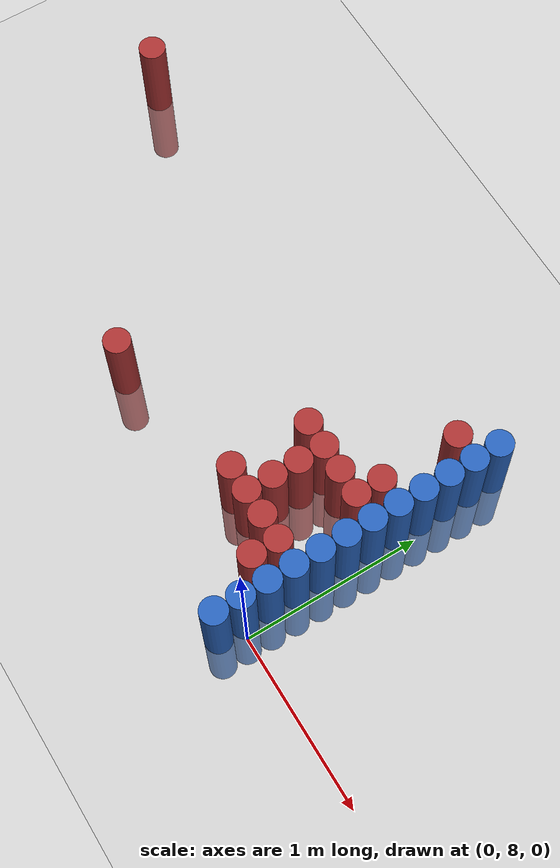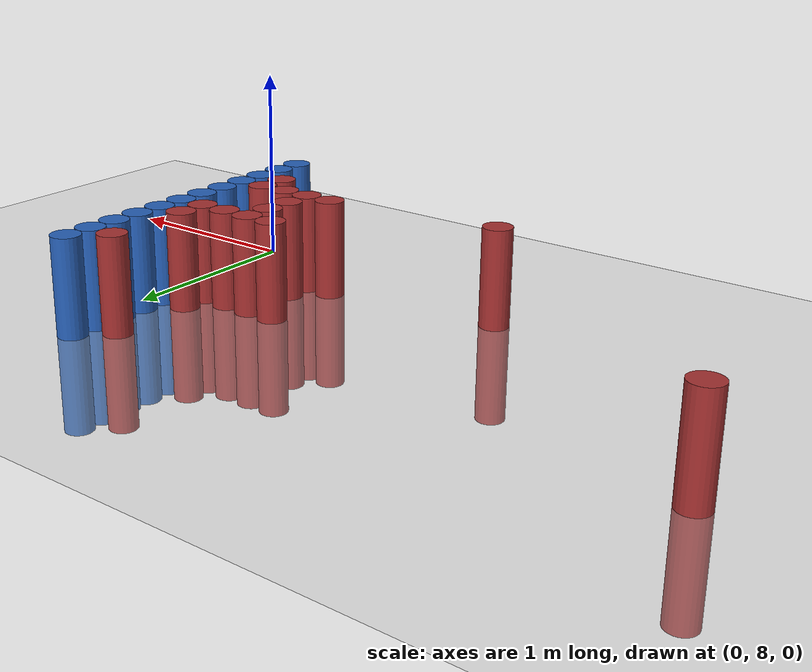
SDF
<sdf version="1.6">
 <world name="world_172">
  <model name="ground_plane">
   <static>1</static>
   <link name="link">
    <collision name="collision">
     <geometry><plane><normal>0 0 1</normal><size>100 100</size></plane></geometry>
     <surface><friction><ode><mu>100</mu><mu2>50</mu2></ode></friction></surface>
    </collision>
    <visual name="visual">
     <cast_shadows>0</cast_shadows>
     <geometry><plane><normal>0 0 1</normal><size>100 100</size></plane></geometry>
     <material>
      <script><uri>file://media/materials/scripts/gazebo.material</uri><name>Gazebo/Grey</name></script>
     </material>
    </visual>
   </link>
  </model>
  <model name="unit_cylinder_157">
   <static>1</static>
   <pose>-3.075000 9.225000 0.000000 0.000000 0.000000 0.000000</pose>
   <link name="link">
    <inertial>
     <mass>1</mass>
     <inertia><ixx>0.145833</ixx><ixy>0</ixy><ixz>0</ixz><iyy>0.145833</iyy><iyz>0</iyz><izz>0.125</izz></inertia>
    </inertial>
    <collision name="collision">
     <geometry><cylinder><radius>0.075000</radius><length>1</length></cylinder></geometry>
    </collision>
    <visual name="visual">
     <geometry><cylinder><radius>0.075000</radius><length>1</length></cylinder></geometry>
     <material>
      <ambient>0.648000 0.192000 0.192000 1</ambient>
      <diffuse>0.648000 0.192000 0.192000 1</diffuse>
     </material>
     <material>
      <script><name>Gazebo/Grey</name><uri>file://media/materials/scripts/gazebo.material</uri></script>
     </material>
    </visual>
   </link>
  </model>
  <model name="unit_cylinder_163">
   <static>1</static>
   <pose>-1.575000 8.175000 0.000000 0.000000 0.000000 0.000000</pose>
   <link name="link">
    <inertial>
     <mass>1</mass>
     <inertia><ixx>0.145833</ixx><ixy>0</ixy><ixz>0</ixz><iyy>0.145833</iyy><iyz>0</iyz><izz>0.125</izz></inertia>
    </inertial>
    <collision name="collision">
     <geometry><cylinder><radius>0.075000</radius><length>1</length></cylinder></geometry>
    </collision>
    <visual name="visual">
     <geometry><cylinder><radius>0.075000</radius><length>1</length></cylinder></geometry>
     <material>
      <ambient>0.648000 0.192000 0.192000 1</ambient>
      <diffuse>0.648000 0.192000 0.192000 1</diffuse>
     </material>
     <material>
      <script><name>Gazebo/Grey</name><uri>file://media/materials/scripts/gazebo.material</uri></script>
     </material>
    </visual>
   </link>
  </model>
  <model name="unit_cylinder_164">
   <static>1</static>
   <pose>-0.675000 8.325000 0.000000 0.000000 0.000000 0.000000</pose>
   <link name="link">
    <inertial>
     <mass>1</mass>
     <inertia><ixx>0.145833</ixx><ixy>0</ixy><ixz>0</ixz><iyy>0.145833</iyy><iyz>0</iyz><izz>0.125</izz></inertia>
    </inertial>
    <collision name="collision">
     <geometry><cylinder><radius>0.075000</radius><length>1</length></cylinder></geometry>
    </collision>
    <visual name="visual">
     <geometry><cylinder><radius>0.075000</radius><length>1</length></cylinder></geometry>
     <material>
      <ambient>0.648000 0.192000 0.192000 1</ambient>
      <diffuse>0.648000 0.192000 0.192000 1</diffuse>
     </material>
     <material>
      <script><name>Gazebo/Grey</name><uri>file://media/materials/scripts/gazebo.material</uri></script>
     </material>
    </visual>
   </link>
  </model>
  <model name="unit_cylinder_165">
   <static>1</static>
   <pose>-0.675000 8.775000 0.000000 0.000000 0.000000 0.000000</pose>
   <link name="link">
    <inertial>
     <mass>1</mass>
     <inertia><ixx>0.145833</ixx><ixy>0</ixy><ixz>0</ixz><iyy>0.145833</iyy><iyz>0</iyz><izz>0.125</izz></inertia>
    </inertial>
    <collision name="collision">
     <geometry><cylinder><radius>0.075000</radius><length>1</length></cylinder></geometry>
    </collision>
    <visual name="visual">
     <geometry><cylinder><radius>0.075000</radius><length>1</length></cylinder></geometry>
     <material>
      <ambient>0.648000 0.192000 0.192000 1</ambient>
      <diffuse>0.648000 0.192000 0.192000 1</diffuse>
     </material>
     <material>
      <script><name>Gazebo/Grey</name><uri>file://media/materials/scripts/gazebo.material</uri></script>
     </material>
    </visual>
   </link>
  </model>
  <model name="unit_cylinder_166">
   <static>1</static>
   <pose>-0.525000 8.325000 0.000000 0.000000 0.000000 0.000000</pose>
   <link name="link">
    <inertial>
     <mass>1</mass>
     <inertia><ixx>0.145833</ixx><ixy>0</ixy><ixz>0</ixz><iyy>0.145833</iyy><iyz>0</iyz><izz>0.125</izz></inertia>
    </inertial>
    <collision name="collision">
     <geometry><cylinder><radius>0.075000</radius><length>1</length></cylinder></geometry>
    </collision>
    <visual name="visual">
     <geometry><cylinder><radius>0.075000</radius><length>1</length></cylinder></geometry>
     <material>
      <ambient>0.648000 0.192000 0.192000 1</ambient>
      <diffuse>0.648000 0.192000 0.192000 1</diffuse>
     </material>
     <material>
      <script><name>Gazebo/Grey</name><uri>file://media/materials/scripts/gazebo.material</uri></script>
     </material>
    </visual>
   </link>
  </model>
  <model name="unit_cylinder_167">
   <static>1</static>
   <pose>-0.525000 8.475000 0.000000 0.000000 0.000000 0.000000</pose>
   <link name="link">
    <inertial>
     <mass>1</mass>
     <inertia><ixx>0.145833</ixx><ixy>0</ixy><ixz>0</ixz><iyy>0.145833</iyy><iyz>0</iyz><izz>0.125</izz></inertia>
    </inertial>
    <collision name="collision">
     <geometry><cylinder><radius>0.075000</radius><length>1</length></cylinder></geometry>
    </collision>
    <visual name="visual">
     <geometry><cylinder><radius>0.075000</radius><length>1</length></cylinder></geometry>
     <material>
      <ambient>0.648000 0.192000 0.192000 1</ambient>
      <diffuse>0.648000 0.192000 0.192000 1</diffuse>
     </material>
     <material>
      <script><name>Gazebo/Grey</name><uri>file://media/materials/scripts/gazebo.material</uri></script>
     </material>
    </visual>
   </link>
  </model>
  <model name="unit_cylinder_168">
   <static>1</static>
   <pose>-0.525000 8.625000 0.000000 0.000000 0.000000 0.000000</pose>
   <link name="link">
    <inertial>
     <mass>1</mass>
     <inertia><ixx>0.145833</ixx><ixy>0</ixy><ixz>0</ixz><iyy>0.145833</iyy><iyz>0</iyz><izz>0.125</izz></inertia>
    </inertial>
    <collision name="collision">
     <geometry><cylinder><radius>0.075000</radius><length>1</length></cylinder></geometry>
    </collision>
    <visual name="visual">
     <geometry><cylinder><radius>0.075000</radius><length>1</length></cylinder></geometry>
     <material>
      <ambient>0.648000 0.192000 0.192000 1</ambient>
      <diffuse>0.648000 0.192000 0.192000 1</diffuse>
     </material>
     <material>
      <script><name>Gazebo/Grey</name><uri>file://media/materials/scripts/gazebo.material</uri></script>
     </material>
    </visual>
   </link>
  </model>
  <model name="unit_cylinder_169">
   <static>1</static>
   <pose>-0.525000 8.775000 0.000000 0.000000 0.000000 0.000000</pose>
   <link name="link">
    <inertial>
     <mass>1</mass>
     <inertia><ixx>0.145833</ixx><ixy>0</ixy><ixz>0</ixz><iyy>0.145833</iyy><iyz>0</iyz><izz>0.125</izz></inertia>
    </inertial>
    <collision name="collision">
     <geometry><cylinder><radius>0.075000</radius><length>1</length></cylinder></geometry>
    </collision>
    <visual name="visual">
     <geometry><cylinder><radius>0.075000</radius><length>1</length></cylinder></geometry>
     <material>
      <ambient>0.648000 0.192000 0.192000 1</ambient>
      <diffuse>0.648000 0.192000 0.192000 1</diffuse>
     </material>
     <material>
      <script><name>Gazebo/Grey</name><uri>file://media/materials/scripts/gazebo.material</uri></script>
     </material>
    </visual>
   </link>
  </model>
  <model name="unit_cylinder_171">
   <static>1</static>
   <pose>-0.375000 8.325000 0.000000 0.000000 0.000000 0.000000</pose>
   <link name="link">
    <inertial>
     <mass>1</mass>
     <inertia><ixx>0.145833</ixx><ixy>0</ixy><ixz>0</ixz><iyy>0.145833</iyy><iyz>0</iyz><izz>0.125</izz></inertia>
    </inertial>
    <collision name="collision">
     <geometry><cylinder><radius>0.075000</radius><length>1</length></cylinder></geometry>
    </collision>
    <visual name="visual">
     <geometry><cylinder><radius>0.075000</radius><length>1</length></cylinder></geometry>
     <material>
      <ambient>0.648000 0.192000 0.192000 1</ambient>
      <diffuse>0.648000 0.192000 0.192000 1</diffuse>
     </material>
     <material>
      <script><name>Gazebo/Grey</name><uri>file://media/materials/scripts/gazebo.material</uri></script>
     </material>
    </visual>
   </link>
  </model>
  <model name="unit_cylinder_172">
   <static>1</static>
   <pose>-0.375000 8.775000 0.000000 0.000000 0.000000 0.000000</pose>
   <link name="link">
    <inertial>
     <mass>1</mass>
     <inertia><ixx>0.145833</ixx><ixy>0</ixy><ixz>0</ixz><iyy>0.145833</iyy><iyz>0</iyz><izz>0.125</izz></inertia>
    </inertial>
    <collision name="collision">
     <geometry><cylinder><radius>0.075000</radius><length>1</length></cylinder></geometry>
    </collision>
    <visual name="visual">
     <geometry><cylinder><radius>0.075000</radius><length>1</length></cylinder></geometry>
     <material>
      <ambient>0.648000 0.192000 0.192000 1</ambient>
      <diffuse>0.648000 0.192000 0.192000 1</diffuse>
     </material>
     <material>
      <script><name>Gazebo/Grey</name><uri>file://media/materials/scripts/gazebo.material</uri></script>
     </material>
    </visual>
   </link>
  </model>
  <model name="unit_cylinder_178">
   <static>1</static>
   <pose>-0.225000 8.175000 0.000000 0.000000 0.000000 0.000000</pose>
   <link name="link">
    <inertial>
     <mass>1</mass>
     <inertia><ixx>0.145833</ixx><ixy>0</ixy><ixz>0</ixz><iyy>0.145833</iyy><iyz>0</iyz><izz>0.125</izz></inertia>
    </inertial>
    <collision name="collision">
     <geometry><cylinder><radius>0.075000</radius><length>1</length></cylinder></geometry>
    </collision>
    <visual name="visual">
     <geometry><cylinder><radius>0.075000</radius><length>1</length></cylinder></geometry>
     <material>
      <ambient>0.648000 0.192000 0.192000 1</ambient>
      <diffuse>0.648000 0.192000 0.192000 1</diffuse>
     </material>
     <material>
      <script><name>Gazebo/Grey</name><uri>file://media/materials/scripts/gazebo.material</uri></script>
     </material>
    </visual>
   </link>
  </model>
  <model name="unit_cylinder_179">
   <static>1</static>
   <pose>-0.225000 8.325000 0.000000 0.000000 0.000000 0.000000</pose>
   <link name="link">
    <inertial>
     <mass>1</mass>
     <inertia><ixx>0.145833</ixx><ixy>0</ixy><ixz>0</ixz><iyy>0.145833</iyy><iyz>0</iyz><izz>0.125</izz></inertia>
    </inertial>
    <collision name="collision">
     <geometry><cylinder><radius>0.075000</radius><length>1</length></cylinder></geometry>
    </collision>
    <visual name="visual">
     <geometry><cylinder><radius>0.075000</radius><length>1</length></cylinder></geometry>
     <material>
      <ambient>0.648000 0.192000 0.192000 1</ambient>
      <diffuse>0.648000 0.192000 0.192000 1</diffuse>
     </material>
     <material>
      <script><name>Gazebo/Grey</name><uri>file://media/materials/scripts/gazebo.material</uri></script>
     </material>
    </visual>
   </link>
  </model>
  <model name="unit_cylinder_180">
   <static>1</static>
   <pose>-0.225000 8.775000 0.000000 0.000000 0.000000 0.000000</pose>
   <link name="link">
    <inertial>
     <mass>1</mass>
     <inertia><ixx>0.145833</ixx><ixy>0</ixy><ixz>0</ixz><iyy>0.145833</iyy><iyz>0</iyz><izz>0.125</izz></inertia>
    </inertial>
    <collision name="collision">
     <geometry><cylinder><radius>0.075000</radius><length>1</length></cylinder></geometry>
    </collision>
    <visual name="visual">
     <geometry><cylinder><radius>0.075000</radius><length>1</length></cylinder></geometry>
     <material>
      <ambient>0.648000 0.192000 0.192000 1</ambient>
      <diffuse>0.648000 0.192000 0.192000 1</diffuse>
     </material>
     <material>
      <script><name>Gazebo/Grey</name><uri>file://media/materials/scripts/gazebo.material</uri></script>
     </material>
    </visual>
   </link>
  </model>
  <model name="unit_cylinder_181">
   <static>1</static>
   <pose>-0.225000 8.925000 0.000000 0.000000 0.000000 0.000000</pose>
   <link name="link">
    <inertial>
     <mass>1</mass>
     <inertia><ixx>0.145833</ixx><ixy>0</ixy><ixz>0</ixz><iyy>0.145833</iyy><iyz>0</iyz><izz>0.125</izz></inertia>
    </inertial>
    <collision name="collision">
     <geometry><cylinder><radius>0.075000</radius><length>1</length></cylinder></geometry>
    </collision>
    <visual name="visual">
     <geometry><cylinder><radius>0.075000</radius><length>1</length></cylinder></geometry>
     <material>
      <ambient>0.648000 0.192000 0.192000 1</ambient>
      <diffuse>0.648000 0.192000 0.192000 1</diffuse>
     </material>
     <material>
      <script><name>Gazebo/Grey</name><uri>file://media/materials/scripts/gazebo.material</uri></script>
     </material>
    </visual>
   </link>
  </model>
  <model name="unit_cylinder_182">
   <static>1</static>
   <pose>-0.225000 9.375000 0.000000 0.000000 0.000000 0.000000</pose>
   <link name="link">
    <inertial>
     <mass>1</mass>
     <inertia><ixx>0.145833</ixx><ixy>0</ixy><ixz>0</ixz><iyy>0.145833</iyy><iyz>0</iyz><izz>0.125</izz></inertia>
    </inertial>
    <collision name="collision">
     <geometry><cylinder><radius>0.075000</radius><length>1</length></cylinder></geometry>
    </collision>
    <visual name="visual">
     <geometry><cylinder><radius>0.075000</radius><length>1</length></cylinder></geometry>
     <material>
      <ambient>0.648000 0.192000 0.192000 1</ambient>
      <diffuse>0.648000 0.192000 0.192000 1</diffuse>
     </material>
     <material>
      <script><name>Gazebo/Grey</name><uri>file://media/materials/scripts/gazebo.material</uri></script>
     </material>
    </visual>
   </link>
  </model>
  <model name="unit_cylinder_201">
   <static>1</static>
   <pose>-0.075000 7.875000 0.000000 0.000000 0.000000 0.000000</pose>
   <link name="link">
    <inertial>
     <mass>1</mass>
     <inertia><ixx>0.145833</ixx><ixy>0</ixy><ixz>0</ixz><iyy>0.145833</iyy><iyz>0</iyz><izz>0.125</izz></inertia>
    </inertial>
    <collision name="collision">
     <geometry><cylinder><radius>0.075000</radius><length>1</length></cylinder></geometry>
    </collision>
    <visual name="visual">
     <geometry><cylinder><radius>0.075000</radius><length>1</length></cylinder></geometry>
     <material>
      <ambient>0.152000 0.379000 0.720000 1</ambient>
      <diffuse>0.152000 0.379000 0.720000 1</diffuse>
     </material>
     <material>
      <script><name>Gazebo/Grey</name><uri>file://media/materials/scripts/gazebo.material</uri></script>
     </material>
    </visual>
   </link>
  </model>
  <model name="unit_cylinder_202">
   <static>1</static>
   <pose>-0.075000 8.025000 0.000000 0.000000 0.000000 0.000000</pose>
   <link name="link">
    <inertial>
     <mass>1</mass>
     <inertia><ixx>0.145833</ixx><ixy>0</ixy><ixz>0</ixz><iyy>0.145833</iyy><iyz>0</iyz><izz>0.125</izz></inertia>
    </inertial>
    <collision name="collision">
     <geometry><cylinder><radius>0.075000</radius><length>1</length></cylinder></geometry>
    </collision>
    <visual name="visual">
     <geometry><cylinder><radius>0.075000</radius><length>1</length></cylinder></geometry>
     <material>
      <ambient>0.152000 0.379000 0.720000 1</ambient>
      <diffuse>0.152000 0.379000 0.720000 1</diffuse>
     </material>
     <material>
      <script><name>Gazebo/Grey</name><uri>file://media/materials/scripts/gazebo.material</uri></script>
     </material>
    </visual>
   </link>
  </model>
  <model name="unit_cylinder_203">
   <static>1</static>
   <pose>-0.075000 8.175000 0.000000 0.000000 0.000000 0.000000</pose>
   <link name="link">
    <inertial>
     <mass>1</mass>
     <inertia><ixx>0.145833</ixx><ixy>0</ixy><ixz>0</ixz><iyy>0.145833</iyy><iyz>0</iyz><izz>0.125</izz></inertia>
    </inertial>
    <collision name="collision">
     <geometry><cylinder><radius>0.075000</radius><length>1</length></cylinder></geometry>
    </collision>
    <visual name="visual">
     <geometry><cylinder><radius>0.075000</radius><length>1</length></cylinder></geometry>
     <material>
      <ambient>0.152000 0.379000 0.720000 1</ambient>
      <diffuse>0.152000 0.379000 0.720000 1</diffuse>
     </material>
     <material>
      <script><name>Gazebo/Grey</name><uri>file://media/materials/scripts/gazebo.material</uri></script>
     </material>
    </visual>
   </link>
  </model>
  <model name="unit_cylinder_204">
   <static>1</static>
   <pose>-0.075000 8.325000 0.000000 0.000000 0.000000 0.000000</pose>
   <link name="link">
    <inertial>
     <mass>1</mass>
     <inertia><ixx>0.145833</ixx><ixy>0</ixy><ixz>0</ixz><iyy>0.145833</iyy><iyz>0</iyz><izz>0.125</izz></inertia>
    </inertial>
    <collision name="collision">
     <geometry><cylinder><radius>0.075000</radius><length>1</length></cylinder></geometry>
    </collision>
    <visual name="visual">
     <geometry><cylinder><radius>0.075000</radius><length>1</length></cylinder></geometry>
     <material>
      <ambient>0.152000 0.379000 0.720000 1</ambient>
      <diffuse>0.152000 0.379000 0.720000 1</diffuse>
     </material>
     <material>
      <script><name>Gazebo/Grey</name><uri>file://media/materials/scripts/gazebo.material</uri></script>
     </material>
    </visual>
   </link>
  </model>
  <model name="unit_cylinder_205">
   <static>1</static>
   <pose>-0.075000 8.475000 0.000000 0.000000 0.000000 0.000000</pose>
   <link name="link">
    <inertial>
     <mass>1</mass>
     <inertia><ixx>0.145833</ixx><ixy>0</ixy><ixz>0</ixz><iyy>0.145833</iyy><iyz>0</iyz><izz>0.125</izz></inertia>
    </inertial>
    <collision name="collision">
     <geometry><cylinder><radius>0.075000</radius><length>1</length></cylinder></geometry>
    </collision>
    <visual name="visual">
     <geometry><cylinder><radius>0.075000</radius><length>1</length></cylinder></geometry>
     <material>
      <ambient>0.152000 0.379000 0.720000 1</ambient>
      <diffuse>0.152000 0.379000 0.720000 1</diffuse>
     </material>
     <material>
      <script><name>Gazebo/Grey</name><uri>file://media/materials/scripts/gazebo.material</uri></script>
     </material>
    </visual>
   </link>
  </model>
  <model name="unit_cylinder_206">
   <static>1</static>
   <pose>-0.075000 8.625000 0.000000 0.000000 0.000000 0.000000</pose>
   <link name="link">
    <inertial>
     <mass>1</mass>
     <inertia><ixx>0.145833</ixx><ixy>0</ixy><ixz>0</ixz><iyy>0.145833</iyy><iyz>0</iyz><izz>0.125</izz></inertia>
    </inertial>
    <collision name="collision">
     <geometry><cylinder><radius>0.075000</radius><length>1</length></cylinder></geometry>
    </collision>
    <visual name="visual">
     <geometry><cylinder><radius>0.075000</radius><length>1</length></cylinder></geometry>
     <material>
      <ambient>0.152000 0.379000 0.720000 1</ambient>
      <diffuse>0.152000 0.379000 0.720000 1</diffuse>
     </material>
     <material>
      <script><name>Gazebo/Grey</name><uri>file://media/materials/scripts/gazebo.material</uri></script>
     </material>
    </visual>
   </link>
  </model>
  <model name="unit_cylinder_207">
   <static>1</static>
   <pose>-0.075000 8.775000 0.000000 0.000000 0.000000 0.000000</pose>
   <link name="link">
    <inertial>
     <mass>1</mass>
     <inertia><ixx>0.145833</ixx><ixy>0</ixy><ixz>0</ixz><iyy>0.145833</iyy><iyz>0</iyz><izz>0.125</izz></inertia>
    </inertial>
    <collision name="collision">
     <geometry><cylinder><radius>0.075000</radius><length>1</length></cylinder></geometry>
    </collision>
    <visual name="visual">
     <geometry><cylinder><radius>0.075000</radius><length>1</length></cylinder></geometry>
     <material>
      <ambient>0.152000 0.379000 0.720000 1</ambient>
      <diffuse>0.152000 0.379000 0.720000 1</diffuse>
     </material>
     <material>
      <script><name>Gazebo/Grey</name><uri>file://media/materials/scripts/gazebo.material</uri></script>
     </material>
    </visual>
   </link>
  </model>
  <model name="unit_cylinder_208">
   <static>1</static>
   <pose>-0.075000 8.925000 0.000000 0.000000 0.000000 0.000000</pose>
   <link name="link">
    <inertial>
     <mass>1</mass>
     <inertia><ixx>0.145833</ixx><ixy>0</ixy><ixz>0</ixz><iyy>0.145833</iyy><iyz>0</iyz><izz>0.125</izz></inertia>
    </inertial>
    <collision name="collision">
     <geometry><cylinder><radius>0.075000</radius><length>1</length></cylinder></geometry>
    </collision>
    <visual name="visual">
     <geometry><cylinder><radius>0.075000</radius><length>1</length></cylinder></geometry>
     <material>
      <ambient>0.152000 0.379000 0.720000 1</ambient>
      <diffuse>0.152000 0.379000 0.720000 1</diffuse>
     </material>
     <material>
      <script><name>Gazebo/Grey</name><uri>file://media/materials/scripts/gazebo.material</uri></script>
     </material>
    </visual>
   </link>
  </model>
  <model name="unit_cylinder_209">
   <static>1</static>
   <pose>-0.075000 9.075000 0.000000 0.000000 0.000000 0.000000</pose>
   <link name="link">
    <inertial>
     <mass>1</mass>
     <inertia><ixx>0.145833</ixx><ixy>0</ixy><ixz>0</ixz><iyy>0.145833</iyy><iyz>0</iyz><izz>0.125</izz></inertia>
    </inertial>
    <collision name="collision">
     <geometry><cylinder><radius>0.075000</radius><length>1</length></cylinder></geometry>
    </collision>
    <visual name="visual">
     <geometry><cylinder><radius>0.075000</radius><length>1</length></cylinder></geometry>
     <material>
      <ambient>0.152000 0.379000 0.720000 1</ambient>
      <diffuse>0.152000 0.379000 0.720000 1</diffuse>
     </material>
     <material>
      <script><name>Gazebo/Grey</name><uri>file://media/materials/scripts/gazebo.material</uri></script>
     </material>
    </visual>
   </link>
  </model>
  <model name="unit_cylinder_210">
   <static>1</static>
   <pose>-0.075000 9.225000 0.000000 0.000000 0.000000 0.000000</pose>
   <link name="link">
    <inertial>
     <mass>1</mass>
     <inertia><ixx>0.145833</ixx><ixy>0</ixy><ixz>0</ixz><iyy>0.145833</iyy><iyz>0</iyz><izz>0.125</izz></inertia>
    </inertial>
    <collision name="collision">
     <geometry><cylinder><radius>0.075000</radius><length>1</length></cylinder></geometry>
    </collision>
    <visual name="visual">
     <geometry><cylinder><radius>0.075000</radius><length>1</length></cylinder></geometry>
     <material>
      <ambient>0.152000 0.379000 0.720000 1</ambient>
      <diffuse>0.152000 0.379000 0.720000 1</diffuse>
     </material>
     <material>
      <script><name>Gazebo/Grey</name><uri>file://media/materials/scripts/gazebo.material</uri></script>
     </material>
    </visual>
   </link>
  </model>
  <model name="unit_cylinder_211">
   <static>1</static>
   <pose>-0.075000 9.375000 0.000000 0.000000 0.000000 0.000000</pose>
   <link name="link">
    <inertial>
     <mass>1</mass>
     <inertia><ixx>0.145833</ixx><ixy>0</ixy><ixz>0</ixz><iyy>0.145833</iyy><iyz>0</iyz><izz>0.125</izz></inertia>
    </inertial>
    <collision name="collision">
     <geometry><cylinder><radius>0.075000</radius><length>1</length></cylinder></geometry>
    </collision>
    <visual name="visual">
     <geometry><cylinder><radius>0.075000</radius><length>1</length></cylinder></geometry>
     <material>
      <ambient>0.152000 0.379000 0.720000 1</ambient>
      <diffuse>0.152000 0.379000 0.720000 1</diffuse>
     </material>
     <material>
      <script><name>Gazebo/Grey</name><uri>file://media/materials/scripts/gazebo.material</uri></script>
     </material>
    </visual>
   </link>
  </model>
  <model name="unit_cylinder_212">
   <static>1</static>
   <pose>-0.075000 9.525000 0.000000 0.000000 0.000000 0.000000</pose>
   <link name="link">
    <inertial>
     <mass>1</mass>
     <inertia><ixx>0.145833</ixx><ixy>0</ixy><ixz>0</ixz><iyy>0.145833</iyy><iyz>0</iyz><izz>0.125</izz></inertia>
    </inertial>
    <collision name="collision">
     <geometry><cylinder><radius>0.075000</radius><length>1</length></cylinder></geometry>
    </collision>
    <visual name="visual">
     <geometry><cylinder><radius>0.075000</radius><length>1</length></cylinder></geometry>
     <material>
      <ambient>0.152000 0.379000 0.720000 1</ambient>
      <diffuse>0.152000 0.379000 0.720000 1</diffuse>
     </material>
     <material>
      <script><name>Gazebo/Grey</name><uri>file://media/materials/scripts/gazebo.material</uri></script>
     </material>
    </visual>
   </link>
  </model>
 </world>
</sdf>
